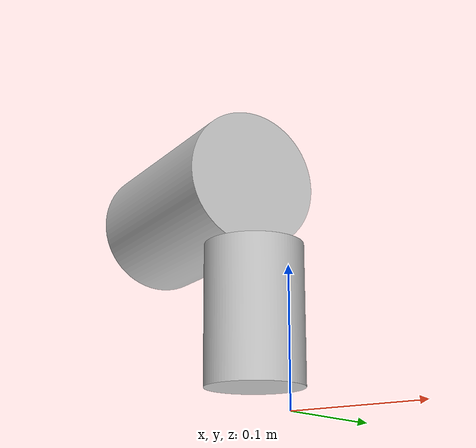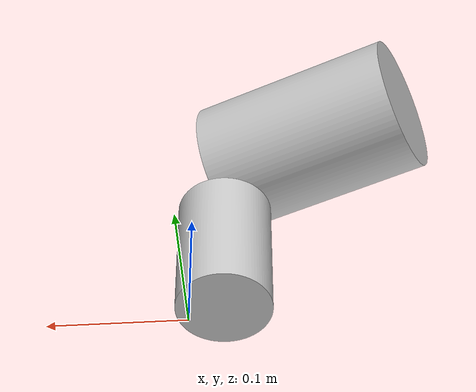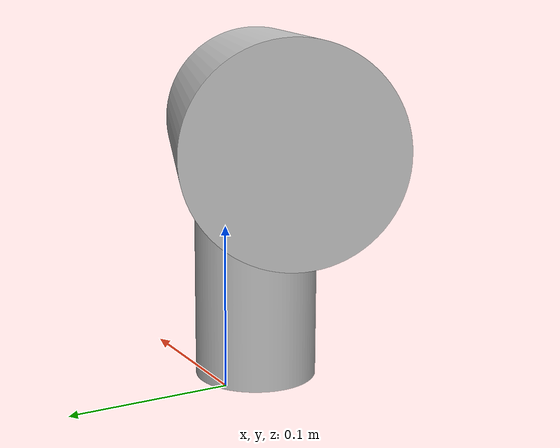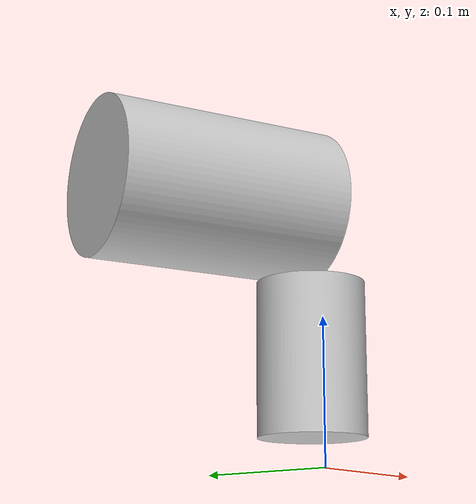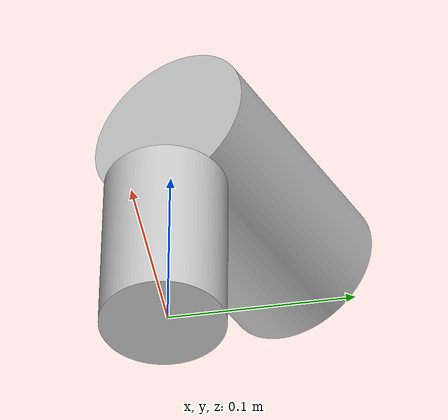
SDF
<sdf version='1.9'>
  <model name='arm_1'>
    <link name='base_link'>
      <inertial>
        <pose>-0.02399894887279498 -0.007387863182670346 0.06661108569012464 0 0 0</pose>
        <mass>3.0210340355082841</mass>
        <inertia>
          <ixx>0.0034429999999999999</ixx>
          <ixy>0</ixy>
          <ixz>0</ixz>
          <iyy>0.0034429999999999999</iyy>
          <iyz>0</iyz>
          <izz>0.0018500000000000001</izz>
        </inertia>
      </inertial>
      <collision name='base_link_collision'>
        <pose>0 0 0 0 0 0</pose>
        <geometry>
          <mesh>
            <scale>0.001 0.001 0.001</scale>
            <uri>meshes/base_link.stl</uri>
          </mesh>
        </geometry>
      </collision>
      <visual name='base_link_visual'>
        <pose>0 0 0 0 0 0</pose>
        <geometry>
          <mesh>
            <scale>0.001 0.001 0.001</scale>
            <uri>meshes/base_link.stl</uri>
          </mesh>
        </geometry>
        <material>
          <diffuse>0.784314 0.784314 0.784314 1</diffuse>
          <ambient>0.784314 0.784314 0.784314 1</ambient>
        </material>
      </visual>
    </link>
    <joint name='motor_1' type='revolute'>
      <pose relative_to='base_link'>-0.023999 -0.007388 0.116611 0 0 0</pose>
      <parent>base_link</parent>
      <child>arm_link_1_v2_2</child>
      <axis>
        <xyz>0 0 -1</xyz>
        <limit>
          <lower>-10000000000000000</lower>
          <upper>10000000000000000</upper>
        </limit>
        <dynamics>
          <spring_reference>0</spring_reference>
          <spring_stiffness>0</spring_stiffness>
        </dynamics>
      </axis>
    </joint>
    <link name='arm_link_1_v2_2'>
      <pose relative_to='motor_1'>0 0 0 0 0 0</pose>
      <inertial>
        <pose>-0.06943606034614613 0.0283484422950904 0.05000008569012458 0 0 0</pose>
        <mass>9.2480633740049534</mass>
        <inertia>
          <ixx>0.013212</ixx>
          <ixy>0.004045</ixy>
          <ixz>0</ixz>
          <iyy>0.021468999999999999</iyy>
          <iyz>0</iyz>
          <izz>0.023120000000000002</izz>
        </inertia>
      </inertial>
      <collision name='arm_link_1_v2_2_collision'>
        <pose>0.023999 0.007388 -0.116611 0 0 0</pose>
        <geometry>
          <mesh>
            <scale>0.001 0.001 0.001</scale>
            <uri>meshes/arm_link_1_v2_2.stl</uri>
          </mesh>
        </geometry>
      </collision>
      <visual name='arm_link_1_v2_2_visual'>
        <pose>0.023999 0.007388 -0.116611 0 0 0</pose>
        <geometry>
          <mesh>
            <scale>0.001 0.001 0.001</scale>
            <uri>meshes/arm_link_1_v2_2.stl</uri>
          </mesh>
        </geometry>
        <material>
          <diffuse>0.784314 0.784314 0.784314 1</diffuse>
          <ambient>0.784314 0.784314 0.784314 1</ambient>
        </material>
      </visual>
    </link>
    <plugin name='gz_ros2_control::GazeboSimROS2ControlPlugin' filename='libgz_ros2_control-system.so'>
      <parameters>/home/hao/Ubuntu_2/ROS_practice/ros2_ws/install/gazebo_simulator/share/gazebo_simulator/config/controller_arm_1.yaml</parameters>
    </plugin>
    <plugin name='ignition::gazebo::systems::PosePublisher' filename='libignition-gazebo-pose-publisher-system.so'>
      <publish_link_pose>true</publish_link_pose>
      <publish_model_pose>true</publish_model_pose>
      <use_pose_vector_msg>true</use_pose_vector_msg>
      <update_frequency>50</update_frequency>
    </plugin>
  </model>
</sdf>
